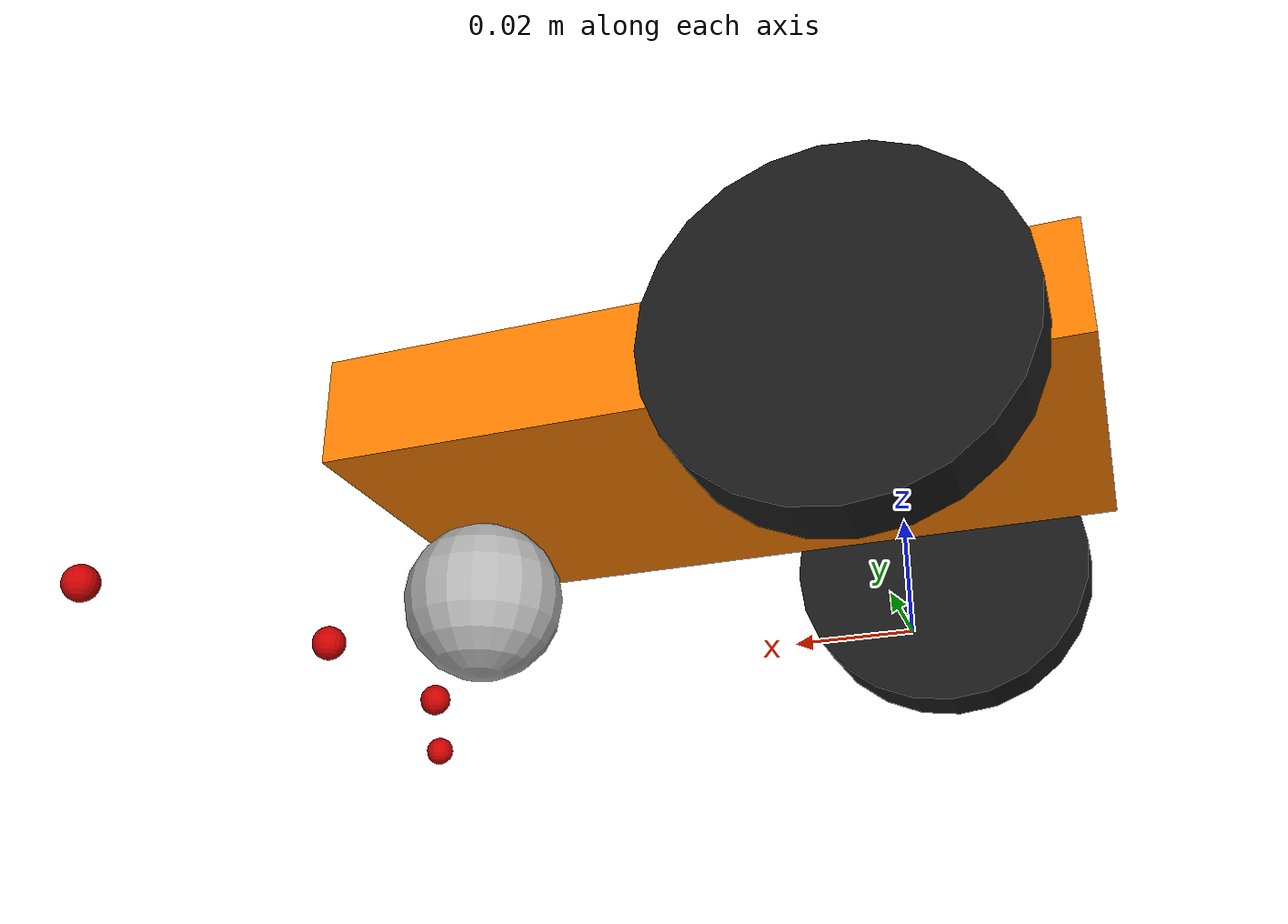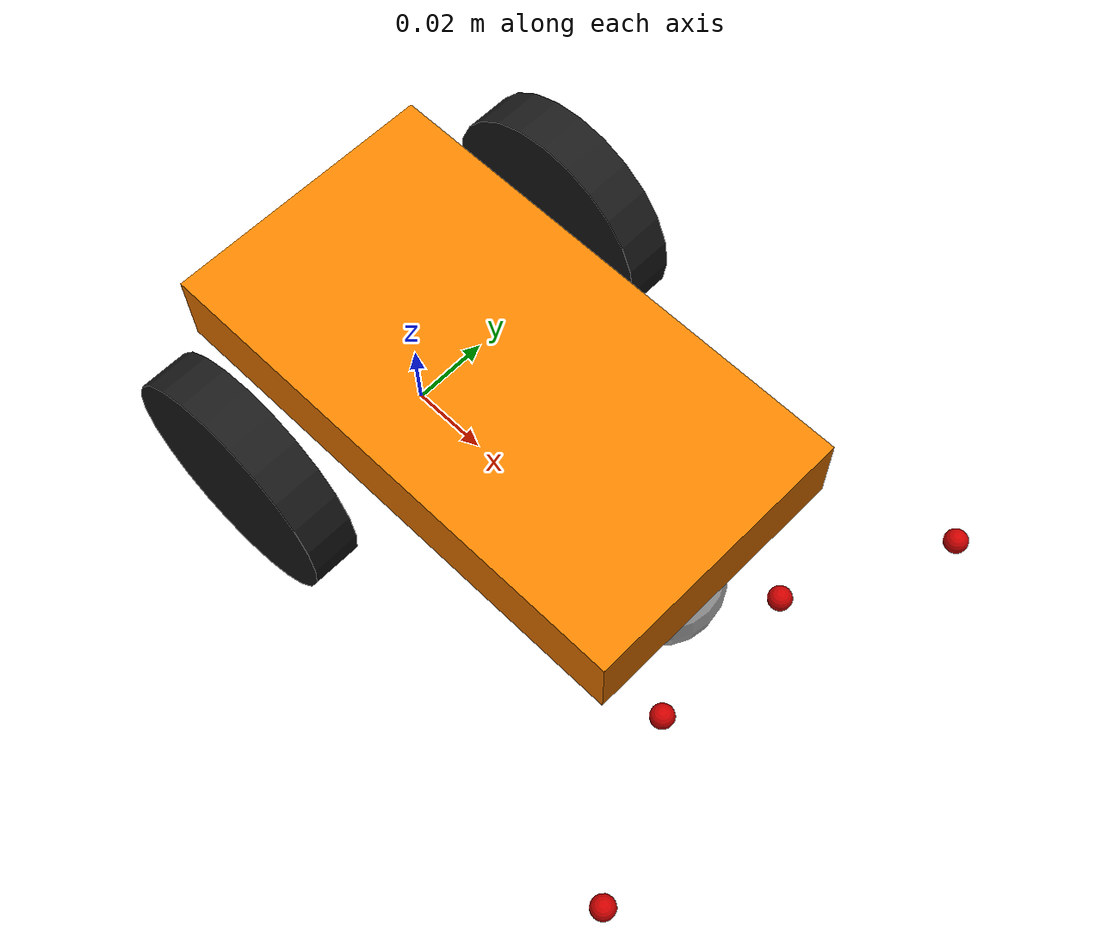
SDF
<?xml version="1.0"?>
<sdf version="1.9">
  <model name="line_follower">

    <link name="base_link">
      <pose>0 0 0.029 0 0 0</pose>
      <inertial>
        <pose>0.03 0 0.012 0 0 0</pose>
        <mass>0.30</mass>
        <inertia>
          <ixx>0.00014</ixx><iyy>0.00043</iyy><izz>0.00055</izz>
          <ixy>0</ixy><ixz>0</ixz><iyz>0</iyz>
        </inertia>
      </inertial>
      <visual name="chassis">
        <pose>0.03 0 0.012 0 0 0</pose>
        <geometry><box><size>0.13 0.07 0.02</size></box></geometry>
        <material>
          <ambient>1.0 0.5 0.0 1</ambient>
          <diffuse>1.0 0.5 0.0 1</diffuse>
        </material>
      </visual>
      <collision name="chassis">
        <pose>0.03 0 0.012 0 0 0</pose>
        <geometry><box><size>0.13 0.07 0.02</size></box></geometry>
      </collision>
      <!-- フォトリフレクタの位置の目印（表示のみ） -->
      <visual name="pr1"><pose>0.120 0.060 -0.026 0 0 0</pose>
        <geometry><sphere><radius>0.003</radius></sphere></geometry>
        <material><ambient>0.8 0 0 1</ambient><diffuse>0.8 0 0 1</diffuse></material></visual>
      <visual name="pr2"><pose>0.100 0.020 -0.026 0 0 0</pose>
        <geometry><sphere><radius>0.003</radius></sphere></geometry>
        <material><ambient>0.8 0 0 1</ambient><diffuse>0.8 0 0 1</diffuse></material></visual>
      <visual name="pr3"><pose>0.100 -0.020 -0.026 0 0 0</pose>
        <geometry><sphere><radius>0.003</radius></sphere></geometry>
        <material><ambient>0.8 0 0 1</ambient><diffuse>0.8 0 0 1</diffuse></material></visual>
      <visual name="pr4"><pose>0.120 -0.060 -0.026 0 0 0</pose>
        <geometry><sphere><radius>0.003</radius></sphere></geometry>
        <material><ambient>0.8 0 0 1</ambient><diffuse>0.8 0 0 1</diffuse></material></visual>
    </link>

    <!-- 左の車輪 -->
    <link name="left_wheel">
      <pose>0 0.05 0.029 0 0 0</pose>
      <inertial>
        <mass>0.02</mass>
        <inertia>
          <ixx>0.0000045</ixx><iyy>0.0000084</iyy><izz>0.0000045</izz>
          <ixy>0</ixy><ixz>0</ixz><iyz>0</iyz>
        </inertia>
      </inertial>
      <visual name="wheel">
        <pose>0 0 0 1.5708 0 0</pose>
        <geometry><cylinder><radius>0.029</radius><length>0.012</length></cylinder></geometry>
        <material><ambient>0.1 0.1 0.1 1</ambient><diffuse>0.1 0.1 0.1 1</diffuse></material>
      </visual>
      <collision name="wheel">
        <pose>0 0 0 1.5708 0 0</pose>
        <geometry><cylinder><radius>0.029</radius><length>0.012</length></cylinder></geometry>
        <surface><friction><ode><mu>1.0</mu><mu2>1.0</mu2></ode></friction></surface>
      </collision>
    </link>
    <joint name="left_wheel_joint" type="revolute">
      <parent>base_link</parent>
      <child>left_wheel</child>
      <axis><xyz expressed_in="__model__">0 1 0</xyz></axis>
    </joint>

    <!-- 右の車輪 -->
    <link name="right_wheel">
      <pose>0 -0.05 0.029 0 0 0</pose>
      <inertial>
        <mass>0.02</mass>
        <inertia>
          <ixx>0.0000045</ixx><iyy>0.0000084</iyy><izz>0.0000045</izz>
          <ixy>0</ixy><ixz>0</ixz><iyz>0</iyz>
        </inertia>
      </inertial>
      <visual name="wheel">
        <pose>0 0 0 1.5708 0 0</pose>
        <geometry><cylinder><radius>0.029</radius><length>0.012</length></cylinder></geometry>
        <material><ambient>0.1 0.1 0.1 1</ambient><diffuse>0.1 0.1 0.1 1</diffuse></material>
      </visual>
      <collision name="wheel">
        <pose>0 0 0 1.5708 0 0</pose>
        <geometry><cylinder><radius>0.029</radius><length>0.012</length></cylinder></geometry>
        <surface><friction><ode><mu>1.0</mu><mu2>1.0</mu2></ode></friction></surface>
      </collision>
    </link>
    <joint name="right_wheel_joint" type="revolute">
      <parent>base_link</parent>
      <child>right_wheel</child>
      <axis><xyz expressed_in="__model__">0 1 0</xyz></axis>
    </joint>

    <!-- ボールキャスター（摩擦なし） -->
    <link name="caster">
      <pose>0.08 0 0.015 0 0 0</pose>
      <inertial>
        <mass>0.01</mass>
        <inertia>
          <ixx>0.0000009</ixx><iyy>0.0000009</iyy><izz>0.0000009</izz>
          <ixy>0</ixy><ixz>0</ixz><iyz>0</iyz>
        </inertia>
      </inertial>
      <visual name="ball">
        <geometry><sphere><radius>0.015</radius></sphere></geometry>
        <material><ambient>0.7 0.7 0.7 1</ambient><diffuse>0.7 0.7 0.7 1</diffuse></material>
      </visual>
      <collision name="ball">
        <geometry><sphere><radius>0.015</radius></sphere></geometry>
        <surface><friction><ode><mu>0.0</mu><mu2>0.0</mu2></ode></friction></surface>
      </collision>
    </link>
    <joint name="caster_joint" type="fixed">
      <parent>base_link</parent>
      <child>caster</child>
    </joint>

    <!-- フォトリフレクタの代わりのカメラ（床を真下に見る） -->
    <link name="photoref_camera_link">
      <pose>0.11 0 0.15 0 1.5708 0</pose>
      <inertial>
        <mass>0.001</mass>
        <inertia>
          <ixx>0.0000001</ixx><iyy>0.0000001</iyy><izz>0.0000001</izz>
          <ixy>0</ixy><ixz>0</ixz><iyz>0</iyz>
        </inertia>
      </inertial>
      <sensor name="photoref_camera" type="camera">
        <camera>
          <!-- 高さ 0.15 m から床の幅 0.16 m が写る画角：2 atan(0.08/0.15) -->
          <horizontal_fov>1.0808</horizontal_fov>
          <image>
            <width>64</width>
            <height>8</height>
            <format>R8G8B8</format>
          </image>
          <clip><near>0.01</near><far>1.0</far></clip>
        </camera>
        <always_on>1</always_on>
        <update_rate>30</update_rate>
        <topic>/photoref_camera</topic>
      </sensor>
    </link>
    <joint name="photoref_camera_joint" type="fixed">
      <parent>base_link</parent>
      <child>photoref_camera_link</child>
    </joint>

    <!-- 左右の車輪の回転速度による駆動（/cmd_vel） -->
    <plugin filename="gz-sim-diff-drive-system" name="gz::sim::systems::DiffDrive">
      <left_joint>left_wheel_joint</left_joint>
      <right_joint>right_wheel_joint</right_joint>
      <wheel_separation>0.10</wheel_separation>
      <wheel_radius>0.029</wheel_radius>
      <topic>/model/line_follower/cmd_vel</topic>
      <odom_topic>/model/line_follower/diff_drive_odometry</odom_topic>
      <max_linear_acceleration>2.0</max_linear_acceleration>
      <min_linear_acceleration>-2.0</min_linear_acceleration>
      <max_angular_acceleration>40.0</max_angular_acceleration>
      <min_angular_acceleration>-40.0</min_angular_acceleration>
    </plugin>

    <!-- 車体の位置と姿勢（コースの座標系 map） -->
    <plugin filename="gz-sim-odometry-publisher-system" name="gz::sim::systems::OdometryPublisher">
      <odom_frame>map</odom_frame>
      <robot_base_frame>base_link</robot_base_frame>
      <odom_publish_frequency>20</odom_publish_frequency>
      <odom_topic>/model/line_follower/odometry</odom_topic>
    </plugin>

    <!-- 車輪の関節の角度と角速度 -->
    <plugin filename="gz-sim-joint-state-publisher-system" name="gz::sim::systems::JointStatePublisher">
      <topic>/model/line_follower/joint_state</topic>
      <joint_name>left_wheel_joint</joint_name>
      <joint_name>right_wheel_joint</joint_name>
    </plugin>

  </model>
</sdf>
